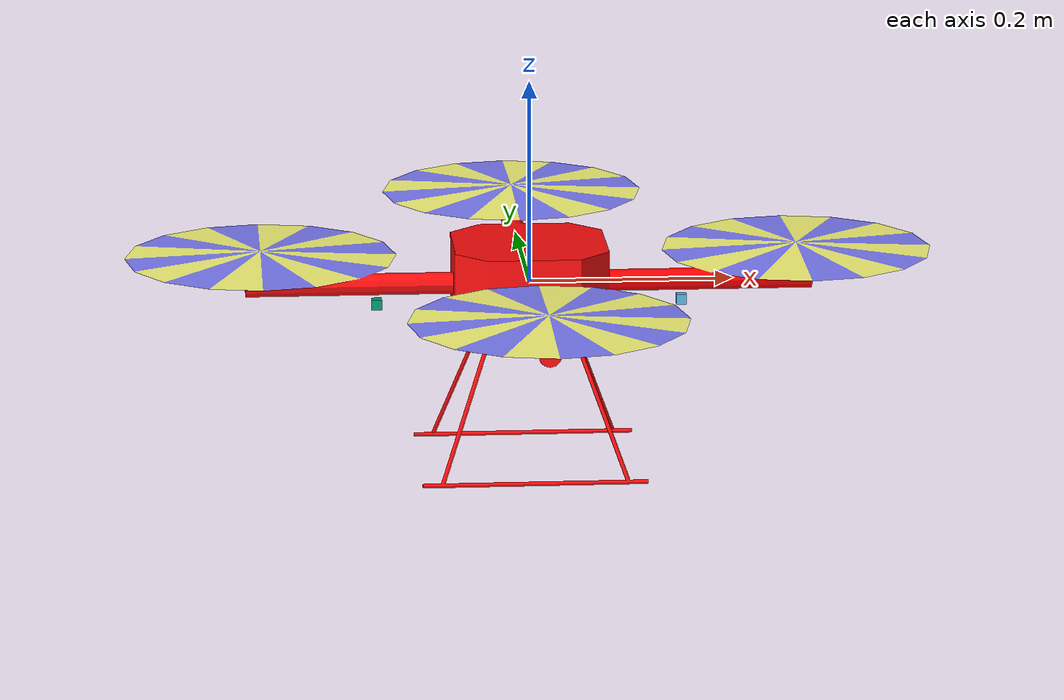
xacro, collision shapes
<?xml version="1.0"?>

<robot name="quadrotor" xmlns:xacro="http://ros.org/wiki/xacro">
  <xacro:property name="sonar_hor_shift" value="0.15" />
  <xacro:property name="sonar_ver_shift" value="0.02" />
  <xacro:property name="sonar_sim_update_rate" value="100" />

  <xacro:include filename="$(find autopilot_simulator)/urdf/sonar_sensor.urdf.xacro" />

  <!-- Main quadrotor link -->
  <link name="base_link">
    <inertial>
      <mass value="1" />
      <origin xyz="0 0 0" />
      <inertia ixx="0.01152" ixy="0.0" ixz="0.0" iyy="0.01152" iyz="0.0" izz="0.0218" />
    </inertial>

    <visual>
      <origin xyz="0 0 0" rpy="0 0 0" />
      <geometry>
        <mesh filename="package://hector_quadrotor_description/meshes/quadrotor/quadrotor_base.dae"/>
      </geometry>
    </visual>

    <collision>
      <max_contacts>1</max_contacts>
      <origin xyz="0 0 0" rpy="0 0 0" />
      <geometry>
        <mesh filename="package://hector_quadrotor_description/meshes/quadrotor/quadrotor_base.stl"/>
      </geometry>
    </collision>
  </link>

  <gazebo>
    <plugin name="quadro_sim" filename="libquadro_sim.so"/>
  </gazebo>

  <gazebo reference="base_link">
    <sensor name="contact_sensor" type="contact">
      <always_on>true</always_on>
      <update_rate>0</update_rate>
      <contact>
        <collision>base_link_collision</collision>
      </contact>
    </sensor>
  </gazebo>

  <!-- Sonar height sensor -->

  <xacro:sonar_sensor name="sonar_f" parent="base_link" ros_topic="sonar_front" update_rate="${sonar_sim_update_rate}" min_range="0.02" max_range="4.5" field_of_view="${40*pi/180}" ray_count="40">
    <origin xyz="${sonar_hor_shift} 0.0 -${sonar_ver_shift}" rpy="0 0 0"/>
  </xacro:sonar_sensor>

  <xacro:sonar_sensor name="sonar_b" parent="base_link" ros_topic="sonar_back" update_rate="${sonar_sim_update_rate}" min_range="0.02" max_range="4.5" field_of_view="${40*pi/180}" ray_count="40">
    <origin xyz="-${sonar_hor_shift} 0.0 -${sonar_ver_shift}" rpy="0 0 ${pi}"/>
  </xacro:sonar_sensor>

  <xacro:sonar_sensor name="sonar_l" parent="base_link" ros_topic="sonar_left" update_rate="${sonar_sim_update_rate}" min_range="0.02" max_range="4.5" field_of_view="${40*pi/180}" ray_count="40">
    <origin xyz="0.0 ${sonar_hor_shift} -${sonar_ver_shift}" rpy="0 0 ${90*pi/180}"/>
  </xacro:sonar_sensor>

  <xacro:sonar_sensor name="sonar_r" parent="base_link" ros_topic="sonar_right" update_rate="${sonar_sim_update_rate}" min_range="0.02" max_range="4.5" field_of_view="${40*pi/180}" ray_count="40">
    <origin xyz="0.0 -${sonar_hor_shift} -${sonar_ver_shift}" rpy="0 0 ${-90*pi/180}"/>
  </xacro:sonar_sensor>

</robot>

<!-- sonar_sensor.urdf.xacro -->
<robot xmlns:xacro="http://ros.org/wiki/xacro">
  <xacro:macro name="sonar_sensor" params="name parent *origin ros_topic update_rate min_range max_range field_of_view ray_count">
    <joint name="${name}_joint" type="fixed">
      <xacro:insert_block name="origin" />
      <parent link="${parent}"/>
      <child link="${name}_link"/>
    </joint>

    <link name="${name}_link">
      <inertial>
        <mass value="0.001" />
        <origin xyz="0 0 0" rpy="0 0 0" />
        <inertia ixx="0.000000017" ixy="0" ixz="0" iyy="0.000000017" iyz="0" izz="0.000000017" />
      </inertial>
      <visual>
        <origin xyz="0 0 0" rpy="0 0 0" />
        <geometry>
          <mesh filename="package://hector_sensors_description/meshes/sonar_sensor/max_sonar_ez4.dae"/>
        </geometry>
      </visual>
      <collision>
        <origin xyz="0 0 0" rpy="0 0 0" />
        <geometry>
          <box size="0.01 0.01 0.01" />
        </geometry>
      </collision>
    </link>
    <gazebo reference="${name}_link">
      <sensor type="ray" name="${name}">
        <always_on>true</always_on>
        <update_rate>${update_rate}</update_rate>
        <pose>0 0 0 0 0 0</pose>
        <visualize>true</visualize>
        <ray>
          <scan>
            <horizontal>
              <samples>${ray_count}</samples>
              <resolution>1</resolution>
              <min_angle>-${field_of_view/2}</min_angle>
              <max_angle> ${field_of_view/2}</max_angle>
            </horizontal>
          </scan>
          <range>
            <min>${min_range}</min>
            <max>${max_range}</max>
            <resolution>0.01</resolution>
          </range>
        </ray>

        <plugin name="gazebo_ros_${name}_controller" filename="libhector_gazebo_ros_sonar.so">
          <topicName>${ros_topic}</topicName>
          <frameId>${name}_link</frameId>
        </plugin>
      </sensor>
    </gazebo>
  </xacro:macro>
</robot>
